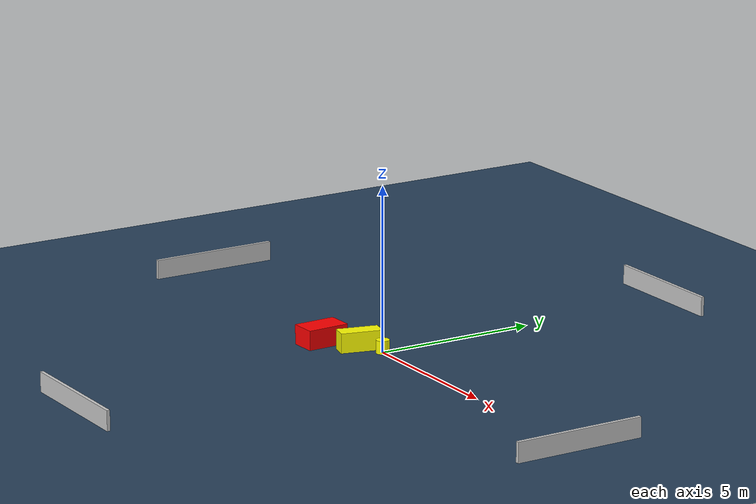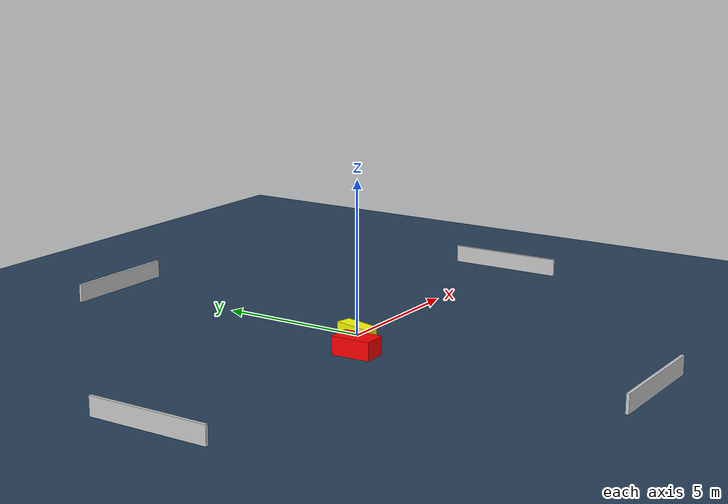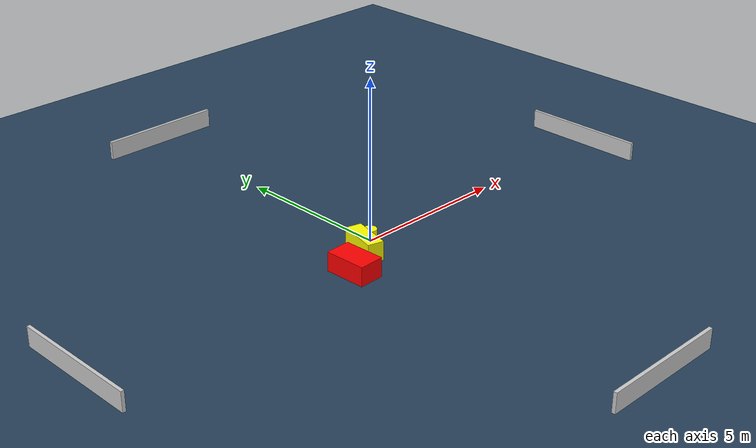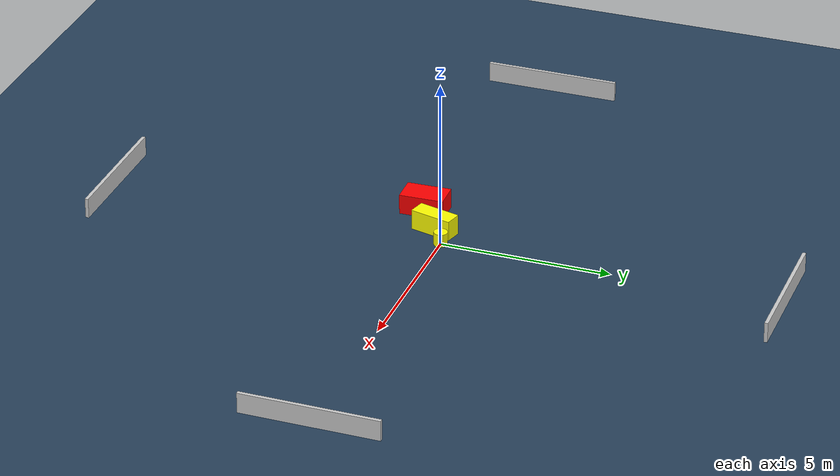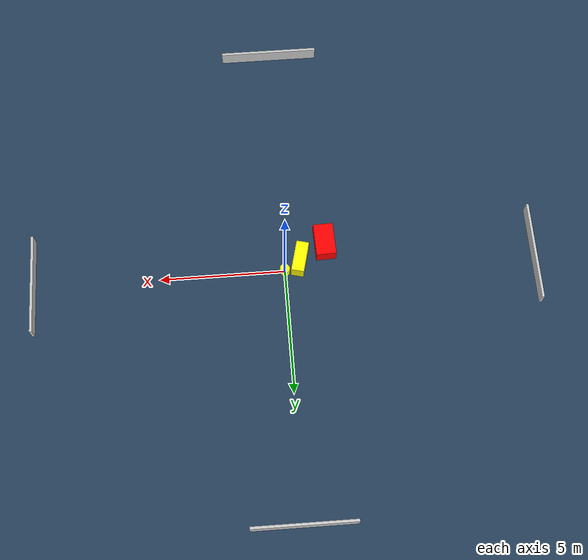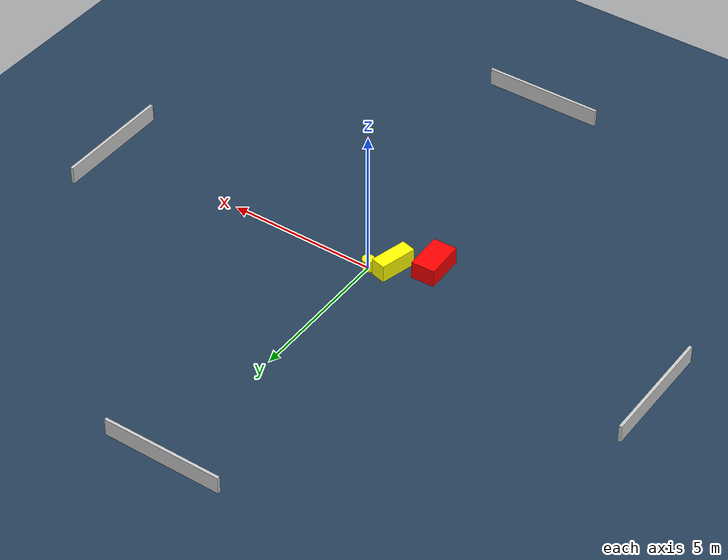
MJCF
<?xml version="1.0" ?>
<mujoco model="generated_environment">
  <option timestep="0.01" integrator="RK4" cone="elliptic"/>
  <default>
    <geom density="1"/>
  </default>
  <asset>
    <texture builtin="gradient" height="3072" name="skybox" rgb1="0.3 0.5 0.7" rgb2="0 0 0" type="skybox" width="512"/>
    <texture builtin="checker" height="300" name="groundplane" rgb1="0.2 0.3 0.4" rgb2="0.1 0.2 0.3" type="2d" width="300"/>
    <material name="groundplane" reflectance="0.2" texrepeat="5 5" texture="groundplane"/>
  </asset>
  <worldbody>
    <light dir="0 0 -1" directional="true" pos="0 0 1.5"/>
    <geom condim="3" friction="0.5 0.005 0.001" material="groundplane" name="floor" pos="0 0 0" size="0 0 0.05" type="plane"/>
    <body name="walls">
      <geom name="wall_1" condim="4" pos="-10.0 0.0 0.3" rgba="0.800000011920929 0.800000011920929 0.800000011920929 1.0" size="0.05 2.0 0.3" type="box"/>
      <geom name="wall_2" condim="4" pos="10.0 0.0 0.3" rgba="0.800000011920929 0.800000011920929 0.800000011920929 1.0" size="0.05 2.0 0.3" type="box"/>
      <geom name="wall_3" condim="4" pos="0.0 -10.0 0.3" rgba="0.800000011920929 0.800000011920929 0.800000011920929 1.0" size="2.0 0.05 0.3" type="box"/>
      <geom name="wall_4" condim="4" pos="0.0 10.0 0.3" rgba="0.800000011920929 0.800000011920929 0.800000011920929 1.0" size="2.0 0.05 0.3" type="box"/>
    </body>
    <body name="robot">
      <joint name="joint_x" type="slide" pos="0 0 0" axis="1 0 0"/>
      <joint name="joint_y" type="slide" pos="0 0 0" axis="0 1 0"/>
      <geom name="robot" type="cylinder" pos="0.0 0.0 0.2" size="0.2 0.2 0.0" mass="5.0" friction="1.0 0.005 0.0001" condim="4" rgba="1.0 1.0 0.0 1.0"/>
    </body>
    <body name="obstacle_1_movable">
      <geom name="obstacle_1_movable" condim="4" pos="-0.638679097429524 -0.4040529292527123 0.3" euler="0 0 75.93858440977806" friction="0.0 0.005 0.001" rgba="1.0 1.0 0.0 1.0" size="0.6293183806059792 0.2516161854157675 0.3" type="box" mass="0.1"/>
      <joint type="free"/>
    </body>
    <body name="obstacle_2_static">
      <geom name="obstacle_2_static" condim="4" pos="-1.6713274327513248 -1.0701559846882445 0.3" euler="0 0 271.8606359433637" friction="0.0 0.005 0.001" rgba="1.0 0.0 0.0 1.0" size="0.6518989364481975 0.3960672281024036 0.3" type="box"/>
    </body>
  </worldbody>
  <actuator>
    <motor name="actuator_x" joint="joint_x" gear="1" ctrlrange="-1 1"/>
    <motor name="actuator_y" joint="joint_y" gear="1" ctrlrange="-1 1"/>
  </actuator>
</mujoco>
